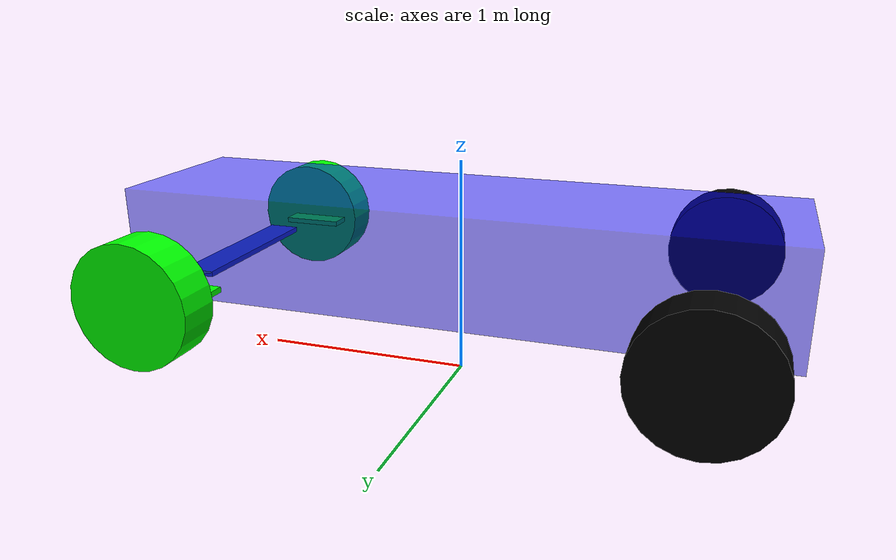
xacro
<?xml version="1.0"?>
<robot name="erod" xmlns:xacro="http://www.ros.org/wiki/xacro">

    <xacro:include filename="$(find erod_description)/urdf/properties.xacro" />
    <xacro:include filename="$(find erod_description)/urdf/materials.xacro" />
    <xacro:include filename="$(find erod_description)/urdf/erod.gazebo" />
    <!-- xacro:include filename="$(find erod_description)/urdf/laser.xacro" / -->
    <!-- xacro:include filename="$(find erod_description)/urdf/laser2.xacro" / -->
    <!-- xacro:include filename="$(find erod_description)/urdf/camera.xacro" / -->

    <!-- eRod-Model -->

		<link name="footprint"/>

    <joint name="base_link" type="fixed">
			<parent link="footprint" />
			<child link="base_link" />
			<origin xyz="0 0 0.6" rpy="0 0 0" />
		</joint>

    <!-- Chassis -->
    <link name="base_link">
      <inertial>
        <mass value="${carMass}" />
        <origin xyz="0 0 0" />
        <inertia  ixx="${carIxx}" ixy="0.0"  ixz="0.0"  iyy="${carIyy}"  iyz="0.0"  izz="${carIzz}" />
      </inertial>
      <visual>
        <origin xyz="0 0 0" rpy="${0} 0 0" />
        <!-- origin xyz="1 0 0" rpy="${M_PI/2} 0 0" / -->
        <geometry>
        <box size="${carLength} ${carWidth} ${carHeight}" />
        <!-- mesh filename="package://meshes/meshes/eRod.dae"/ -->
        </geometry>
        <material name="Blue"/>
      </visual>
      <collision>
        <origin xyz="0 0 0" rpy="0 0 0" />
        <geometry>
          <box size="${carLength} ${carWidth} ${carHeight}" />
        </geometry>
      </collision>
    </link>

    <!-- A link which is needed for the P3D Sensor which is as in reality -->
    <joint name="perfect_state_joint" type="fixed">
      <parent link="base_link" />
      <child link="perfect_state_link" />
      <origin xyz="${-wheelBase/2} 0 ${-carHeight/2-groundClearance+wheelRadius}" rpy="0 0 0" />
    </joint>
    <link name="perfect_state_link">
    </link>

    <!-- Front link of Ackermann -->
    <joint name="front_joint" type="fixed">
    	<parent link="base_link"/>
    	<child link="front_link"/>
    	<origin xyz="${wheelBase/2} 0.0 ${-carHeight/2-groundClearance+wheelRadius}"/>
    </joint>

    <link name="front_link">
      <inertial>
        <mass value="${dummyM}"/>
        <origin xyz="0 0 0" />
        <inertia  ixx="${dummyI}" ixy="0.0"  ixz="0.0"  iyy="${dummyI}"  iyz="0.0"  izz="${dummyI}" />
      </inertial>
      <visual>
        <geometry>
          <box size="${carLength*0.05} ${carWidth} ${carHeight*0.05}" />
        </geometry>
      </visual>
      <collision>
        <geometry>
          <box size="${carLength*0.05} ${carWidth} ${carHeight*0.05}" />
        </geometry>
      </collision>
    </link>

    <!-- the left Ackermann bar -->
    <joint name="front_left_bar_joint" type="revolute" >
        <limit lower="${-max_steer}" upper="${max_steer}" effort="100" velocity="10" />
        <axis xyz="0 0 1" />
        <parent link="front_link" />
        <child link="front_left_bar_link" />
        <origin xyz="0.0 ${hingeWidth/2} 0.0" rpy="0 0 0" />
        <dynamics damping="0.7"/>
    </joint>
    <link name="front_left_bar_link">
        <inertial>
            <mass value="${dummyM}" />
            <origin xyz="0 0 0" />
            <inertia  ixx="${dummyI}" ixy="0.0"  ixz="0.0"  iyy="${dummyI}"  iyz="0.0"  izz="${dummyI}" />
        </inertial>
        <visual>
            <origin xyz="${-carWidth*0.1} 0 0" />
            <geometry>
                <box size="${carLength*0.1} ${carWidth*0.133} ${carHeight*0.05}" />
            </geometry>
            <material name="Green"/>
        </visual>
        <collision>
				<origin xyz="${-carWidth*0.1} 0 0" />
            <geometry>
                <box size="${-carLength*0.1} ${carWidth*0.133} ${carHeight*0.05}" />
            </geometry>
        </collision>
    </link>
    <gazebo reference="front_left_bar_link">
        <material>Gazebo/Green</material>
    </gazebo>

    <!-- the right Ackermann bar -->
    <joint name="front_right_bar_joint" type="revolute" >
        <limit lower="${-max_steer}" upper="${max_steer}" effort="100" velocity="10" />
        <axis xyz="0 0 1" />
        <parent link="front_link" />
        <child link="front_right_bar_link" />
        <origin xyz="0.0 ${-hingeWidth/2} 0.0" rpy="0 0 0" />
        <dynamics damping="0.7"/>
    </joint>
    <link name="front_right_bar_link">
		<inertial>
				<mass value="${dummyM}" />
				<origin xyz="0 0 0" />
				<inertia  ixx="${dummyI}" ixy="0.0"  ixz="0.0"  iyy="${dummyI}"  iyz="0.0"  izz="${dummyI}" />
		</inertial>
		<visual>
			<origin xyz="${-carWidth*0.1} 0 0" />
			<geometry>
				<box size="${carLength*0.1} ${carWidth*0.133} ${carHeight*0.05}" />
			</geometry>
			<material name="Green"/>
		</visual>
		<collision>
		  <origin xyz="${-carWidth*0.1} 0 0" />
			<geometry>
			  <box size="${-carLength*0.1} ${carWidth*0.133} ${carHeight*0.05}" />
			</geometry>
		</collision>
    </link>

	<!-- the front left wheel -->
    <joint name="front_left_wheel_joint" type="continuous" >
        <axis xyz="0 1 0" />
        <parent link="front_left_bar_link" />
        <child link="front_left_wheel_link" />
        <origin xyz="0 ${trackWidth/2-hingeWidth/2} 0" rpy="0 0 0" />
    </joint>

    <link name="front_left_wheel_link">
        <inertial>
            <mass value="${wheelMass}" />
            <origin xyz="0 0 0" />
            <inertia  ixx="0.01" ixy="0.0"  ixz="0.0"  iyy="0.01"  iyz="0.0"  izz="0.01" />
        </inertial>
        <visual>
            <origin xyz="0 0 0" rpy="${M_PI/2} 0 0" />
            <geometry>
              <!-- mesh filename="package://meshes/meshes/rad_eRod.dae"/ -->
              <cylinder radius="${wheelRadius}" length="${wheelWidth}" />
            </geometry>
            <material name="Green"/>
        </visual>
        <collision>
            <origin xyz="0 0 0" rpy="${M_PI/2} 0 0" />
            <geometry>
                <cylinder radius="${wheelRadius}" length="${wheelWidth}" />
            </geometry>
        </collision>
    </link>

	<!-- the front right wheel -->
    <joint name="front_right_wheel_joint" type="continuous" >
        <axis xyz="0 -1 0" />
        <parent link="front_right_bar_link" />
        <child link="front_right_wheel_link" />
        <origin xyz="0 ${-(trackWidth/2-hingeWidth/2)} 0" rpy="0 0 0" />
    </joint>
    <link name="front_right_wheel_link">
        <inertial>
            <mass value="${dummyM}" />
            <origin xyz="0 0 0" />
            <inertia  ixx="0.01" ixy="0.0"  ixz="0.0"  iyy="0.01"  iyz="0.0"  izz="0.01" />
        </inertial>
        <visual>
            <origin xyz="0 0 0" rpy="${-M_PI/2} 0 0" />
            <geometry>
            <!-- mesh filename="package://meshes/meshes/rad_eRod.dae"/ -->
            <cylinder radius="${wheelRadius}" length="${wheelWidth}" />            </geometry>
            <material name="Green"/>
        </visual>
        <collision>
            <origin xyz="0 0 0" rpy="${M_PI/2} 0 0" />
            <geometry>
                <cylinder radius="${wheelRadius}" length="${wheelWidth}" />
            </geometry>
        </collision>
    </link>

		<!-- the back left wheel -->
    <joint name="back_left_wheel_joint" type="continuous" >
        <axis xyz="0 1 0" />
        <parent link="base_link" />
        <child link="back_left_wheel_link" />
				<origin xyz="${-wheelBase/2} ${trackWidth/2} ${-carHeight/2-groundClearance+wheelRadius}" rpy="0 0 0" />
    </joint>
    <link name="back_left_wheel_link">
        <inertial>
            <mass value="${wheelMass}" />
            <origin xyz="0 0 0" />
            <inertia  ixx="0.01" ixy="0.0"  ixz="0.0"  iyy="0.01"  iyz="0.0"  izz="0.01" />
        </inertial>
        <visual>
            <origin xyz="0 0 0" rpy="${M_PI/2} 0 0" />
            <geometry>
            <!-- mesh filename="package://meshes/meshes/rad_eRod.dae"/ -->
            <cylinder radius="${wheelRadius}" length="${wheelWidth}" />            </geometry>
            <material name="Black"/>
        </visual>
        <collision>
            <origin xyz="0 0 0" rpy="${M_PI/2} 0 0" />
            <geometry>
                <cylinder radius="${wheelRadius}" length="${wheelWidth}" />
            </geometry>
        </collision>
    </link>

	<!-- the back right wheel -->
    <joint name="back_right_wheel_joint" type="continuous" >
        <axis xyz="0 -1 0" />
        <parent link="base_link" />
        <child link="back_right_wheel_link" />
        <origin xyz="${-wheelBase/2} ${-trackWidth/2} ${-carHeight/2-groundClearance+wheelRadius}" rpy="0 0 0" />
    </joint>

    <link name="back_right_wheel_link">
        <inertial>
            <mass value="${wheelMass}" />
            <origin xyz="0 0 0" />
            <inertia  ixx="0.01" ixy="0.0"  ixz="0.0"  iyy="0.01"  iyz="0.0"  izz="0.01" />
        </inertial>
        <visual>
            <origin xyz="0 0 0" rpy="${-M_PI/2} 0 0" />
            <geometry>
            <!-- mesh filename="package://meshes/meshes/rad_eRod.dae"/ -->
            <cylinder radius="${wheelRadius}" length="${wheelWidth}" />            </geometry>
            <material name="Black"/>
        </visual>
        <collision>
            <origin xyz="0 0 0" rpy="${M_PI/2} 0 0" />
            <geometry>
                <cylinder radius="${wheelRadius}" length="${wheelWidth}" />
            </geometry>
        </collision>
    </link>

    <!-- Transmission elements -->

    <transmission name="tran1">
      <type>transmission_interface/SimpleTransmission</type>
      <joint name="front_left_bar_joint">
        <hardwareInterface>EffortJointInterface</hardwareInterface>
      </joint>
      <actuator name="motor1">
        <hardwareInterface>EffortJointInterface</hardwareInterface>
        <mechanicalReduction>1</mechanicalReduction>
      </actuator>
    </transmission>

    <transmission name="tran2">
      <type>transmission_interface/SimpleTransmission</type>
      <joint name="front_right_bar_joint">
        <hardwareInterface>EffortJointInterface</hardwareInterface>
      </joint>
      <actuator name="motor2">
        <hardwareInterface>EffortJointInterface</hardwareInterface>
        <mechanicalReduction>1</mechanicalReduction>
      </actuator>
    </transmission>

    <transmission name="tran3">
      <type>transmission_interface/SimpleTransmission</type>
      <joint name="back_left_wheel_joint">
        <hardwareInterface>EffortJointInterface</hardwareInterface>
      </joint>
      <actuator name="motor3">
        <hardwareInterface>EffortJointInterface</hardwareInterface>
        <mechanicalReduction>10</mechanicalReduction>
      </actuator>
    </transmission>

    <transmission name="tran4">
      <type>transmission_interface/SimpleTransmission</type>
      <joint name="back_right_wheel_joint">
        <hardwareInterface>EffortJointInterface</hardwareInterface>
      </joint>
      <actuator name="motor4">
        <hardwareInterface>EffortJointInterface</hardwareInterface>
        <mechanicalReduction>10</mechanicalReduction>
      </actuator>
    </transmission>

</robot>

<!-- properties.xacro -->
<robot name="erod" xmlns:xacro="http://www.ros.org/wiki/xacro">
	<!-- Constants -->
	<xacro:property name="M_PI" value="3.1415926535897931" />
	<xacro:property name="camera_link" value="0.05" />

	<!-- Chasssis Properties -->
	<xacro:property name="carLength" value="3.0" />
	<xacro:property name="carWidth" value="0.8" />
	<xacro:property name="carHeight" value="0.5" />
	<xacro:property name="carMass" value="10" />
	<xacro:property name="carIxx" value="800" />
	<xacro:property name="carIyy" value="200" />
	<xacro:property name="carIzz" value="200" />
	<xacro:property name="groundClearance" value="0.15" />
	<xacro:property name="hingeWidth" value="1.237" />			<!-- Distance between the rotational centres for the front wheel -->

	<!-- Wheel Properties -->
	<xacro:property name="wheelRadius" value="0.28" />
	<xacro:property name="wheelWidth" value="0.195" />
	<xacro:property name="wheelBase" value="2.3" />
	<xacro:property name="trackWidth" value="1.6" />
	<xacro:property name="wheelMass" value="0.01" />
	<xacro:property name="max_steer" value="${0.3}" />

	<!-- Dummy properties -->
	<xacro:property name="dummyI" value="0.01" />
	<xacro:property name="dummyM" value="0.01" />

	<!-- Velodyne Laser -->
	<xacro:property name="laserPosX" value="0.0" />		<!-- Values are relative to the base_link -->
	<xacro:property name="laserPosZ" value="0.5" />

</robot>

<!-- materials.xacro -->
<robot name="materials" xmlns:xacro="http://www.ros.org/wiki/xacro">

  <material name="Red">
    <color rgba="1.0 0 0 1.0"/>
  </material>

  <material name="Green">
    <color rgba="0 1.0 0 1.0"/>
  </material>

  <material name="Blue">
    <color rgba="0 0 1.0 0.5"/>
  </material>

  <material name="Black">
    <color rgba="0 0 0 1.0"/>
  </material>

  <material name="Aqua">
    <color rgba="0 255 255 1.0"/>
  </material>

</robot>
